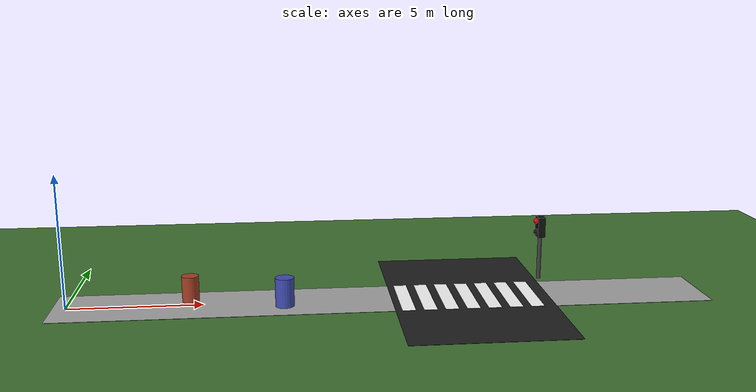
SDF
<sdf version="1.9">
 <world name="swan_test_world">
  <physics name="1ms" type="ignore">
   <max_step_size>0.001</max_step_size>
   <real_time_factor>1.0</real_time_factor>
  </physics>
  <plugin filename="gz-sim-physics-system" name="gz::sim::systems::Physics"/>
  <plugin filename="gz-sim-scene-broadcaster-system" name="gz::sim::systems::SceneBroadcaster"/>
  <plugin filename="gz-sim-sensors-system" name="gz::sim::systems::Sensors">
   <render_engine>ogre2</render_engine>
  </plugin>
  <plugin filename="gz-sim-user-commands-system" name="gz::sim::systems::UserCommands"/>
  <light type="directional" name="sun">
   <pose>0 0 20 0 0 0</pose>
   <diffuse>0.8 0.8 0.8 1</diffuse>
   <specular>0.2 0.2 0.2 1</specular>
   <attenuation>
    <range>1000</range>
    <constant>0.9</constant>
    <linear>0.01</linear>
    <quadratic>0.001</quadratic>
   </attenuation>
   <direction>-0.5 0.1 -0.9</direction>
  </light>
  <model name="ground_plane">
   <static>true</static>
   <link name="link">
    <collision name="collision">
     <geometry><plane><normal>0 0 1</normal><size>100 100</size></plane></geometry>
    </collision>
    <visual name="visual">
     <geometry><plane><normal>0 0 1</normal><size>100 100</size></plane></geometry>
     <material><ambient>0.25 0.45 0.20 1</ambient><diffuse>0.25 0.45 0.20 1</diffuse></material>
    </visual>
   </link>
  </model>
  <model name="sidewalk_start">
   <static>true</static>
   <pose>5.75 0 0.006 0 0 0</pose>
   <link name="link">
    <visual name="visual">
     <geometry><box><size>12.5 3.0 0.01</size></box></geometry>
     <material><ambient>0.65 0.65 0.65 1</ambient><diffuse>0.65 0.65 0.65 1</diffuse></material>
    </visual>
   </link>
  </model>
  <model name="obstacle_1">
   <static>true</static>
   <pose>4.5 0.45 0.5 0 0 0</pose>
   <link name="link">
    <collision name="collision">
     <geometry><cylinder><radius>0.32</radius><length>1.0</length></cylinder></geometry>
    </collision>
    <visual name="visual">
     <geometry><cylinder><radius>0.32</radius><length>1.0</length></cylinder></geometry>
     <material><ambient>0.65 0.25 0.15 1</ambient><diffuse>0.65 0.25 0.15 1</diffuse></material>
    </visual>
   </link>
  </model>
  <model name="obstacle_2">
   <static>true</static>
   <pose>8.0 -0.45 0.55 0 0 0</pose>
   <link name="link">
    <collision name="collision">
     <geometry><cylinder><radius>0.35</radius><length>1.1</length></cylinder></geometry>
    </collision>
    <visual name="visual">
     <geometry><cylinder><radius>0.35</radius><length>1.1</length></cylinder></geometry>
     <material><ambient>0.25 0.30 0.70 1</ambient><diffuse>0.25 0.30 0.70 1</diffuse></material>
    </visual>
   </link>
  </model>
  <model name="road">
   <static>true</static>
   <pose>15 0 0.007 0 0 0</pose>
   <link name="link">
    <visual name="visual">
     <geometry><box><size>6.0 10.0 0.01</size></box></geometry>
     <material><ambient>0.12 0.12 0.12 1</ambient><diffuse>0.12 0.12 0.12 1</diffuse></material>
    </visual>
   </link>
  </model>
  <model name="crosswalk_1">
   <static>true</static>
   <pose>12.5 0 0.015 0 0 0</pose>
   <link name="link">
    <visual name="visual">
     <geometry><box><size>0.5 3.0 0.01</size></box></geometry>
     <material><ambient>1 1 1 1</ambient><diffuse>1 1 1 1</diffuse></material>
    </visual>
   </link>
  </model>
  <model name="crosswalk_2">
   <static>true</static>
   <pose>13.3 0 0.015 0 0 0</pose>
   <link name="link">
    <visual name="visual">
     <geometry><box><size>0.5 3.0 0.01</size></box></geometry>
     <material><ambient>1 1 1 1</ambient><diffuse>1 1 1 1</diffuse></material>
    </visual>
   </link>
  </model>
  <model name="crosswalk_3">
   <static>true</static>
   <pose>14.1 0 0.015 0 0 0</pose>
   <link name="link">
    <visual name="visual">
     <geometry><box><size>0.5 3.0 0.01</size></box></geometry>
     <material><ambient>1 1 1 1</ambient><diffuse>1 1 1 1</diffuse></material>
    </visual>
   </link>
  </model>
  <model name="crosswalk_4">
   <static>true</static>
   <pose>14.9 0 0.015 0 0 0</pose>
   <link name="link">
    <visual name="visual">
     <geometry><box><size>0.5 3.0 0.01</size></box></geometry>
     <material><ambient>1 1 1 1</ambient><diffuse>1 1 1 1</diffuse></material>
    </visual>
   </link>
  </model>
  <model name="crosswalk_5">
   <static>true</static>
   <pose>15.7 0 0.015 0 0 0</pose>
   <link name="link">
    <visual name="visual">
     <geometry><box><size>0.5 3.0 0.01</size></box></geometry>
     <material><ambient>1 1 1 1</ambient><diffuse>1 1 1 1</diffuse></material>
    </visual>
   </link>
  </model>
  <model name="crosswalk_6">
   <static>true</static>
   <pose>16.5 0 0.015 0 0 0</pose>
   <link name="link">
    <visual name="visual">
     <geometry><box><size>0.5 3.0 0.01</size></box></geometry>
     <material><ambient>1 1 1 1</ambient><diffuse>1 1 1 1</diffuse></material>
    </visual>
   </link>
  </model>
  <model name="crosswalk_7">
   <static>true</static>
   <pose>17.3 0 0.015 0 0 0</pose>
   <link name="link">
    <visual name="visual">
     <geometry><box><size>0.5 3.0 0.01</size></box></geometry>
     <material><ambient>1 1 1 1</ambient><diffuse>1 1 1 1</diffuse></material>
    </visual>
   </link>
  </model>
  <model name="traffic_light_pole">
   <static>true</static>
   <pose>18.2 2.0 1.0 0 0 0</pose>
   <link name="link">
    <collision name="collision">
     <geometry><cylinder><radius>0.08</radius><length>2.0</length></cylinder></geometry>
    </collision>
    <visual name="visual">
     <geometry><cylinder><radius>0.08</radius><length>2.0</length></cylinder></geometry>
     <material><ambient>0.25 0.25 0.25 1</ambient><diffuse>0.25 0.25 0.25 1</diffuse></material>
    </visual>
   </link>
  </model>
  <model name="traffic_light_head">
   <static>true</static>
   <pose>18.2 2.0 2.15 0 0 0</pose>
   <link name="link">
    <visual name="visual">
     <geometry><box><size>0.28 0.50 0.80</size></box></geometry>
     <material><ambient>0.05 0.05 0.05 1</ambient><diffuse>0.05 0.05 0.05 1</diffuse></material>
    </visual>
   </link>
  </model>
  <model name="traffic_light_red">
   <static>true</static>
   <pose>18.04 2.0 2.37 0 0 0</pose>
   <link name="link">
    <visual name="visual">
     <geometry><sphere><radius>0.11</radius></sphere></geometry>
     <material><ambient>1 0 0 1</ambient><diffuse>1 0 0 1</diffuse><emissive>0.8 0 0 1</emissive></material>
    </visual>
   </link>
  </model>
  <model name="traffic_light_green">
   <static>true</static>
   <pose>18.04 2.0 1.94 0 0 0</pose>
   <link name="link">
    <visual name="visual">
     <geometry><sphere><radius>0.11</radius></sphere></geometry>
     <material><ambient>0.05 0.08 0.05 1</ambient><diffuse>0.05 0.08 0.05 1</diffuse></material>
    </visual>
   </link>
  </model>
  <model name="sidewalk_end">
   <static>true</static>
   <pose>21 0 0.006 0 0 0</pose>
   <link name="link">
    <visual name="visual">
     <geometry><box><size>6.0 3.0 0.01</size></box></geometry>
     <material><ambient>0.65 0.65 0.65 1</ambient><diffuse>0.65 0.65 0.65 1</diffuse></material>
    </visual>
   </link>
  </model>
 </world>
</sdf>
